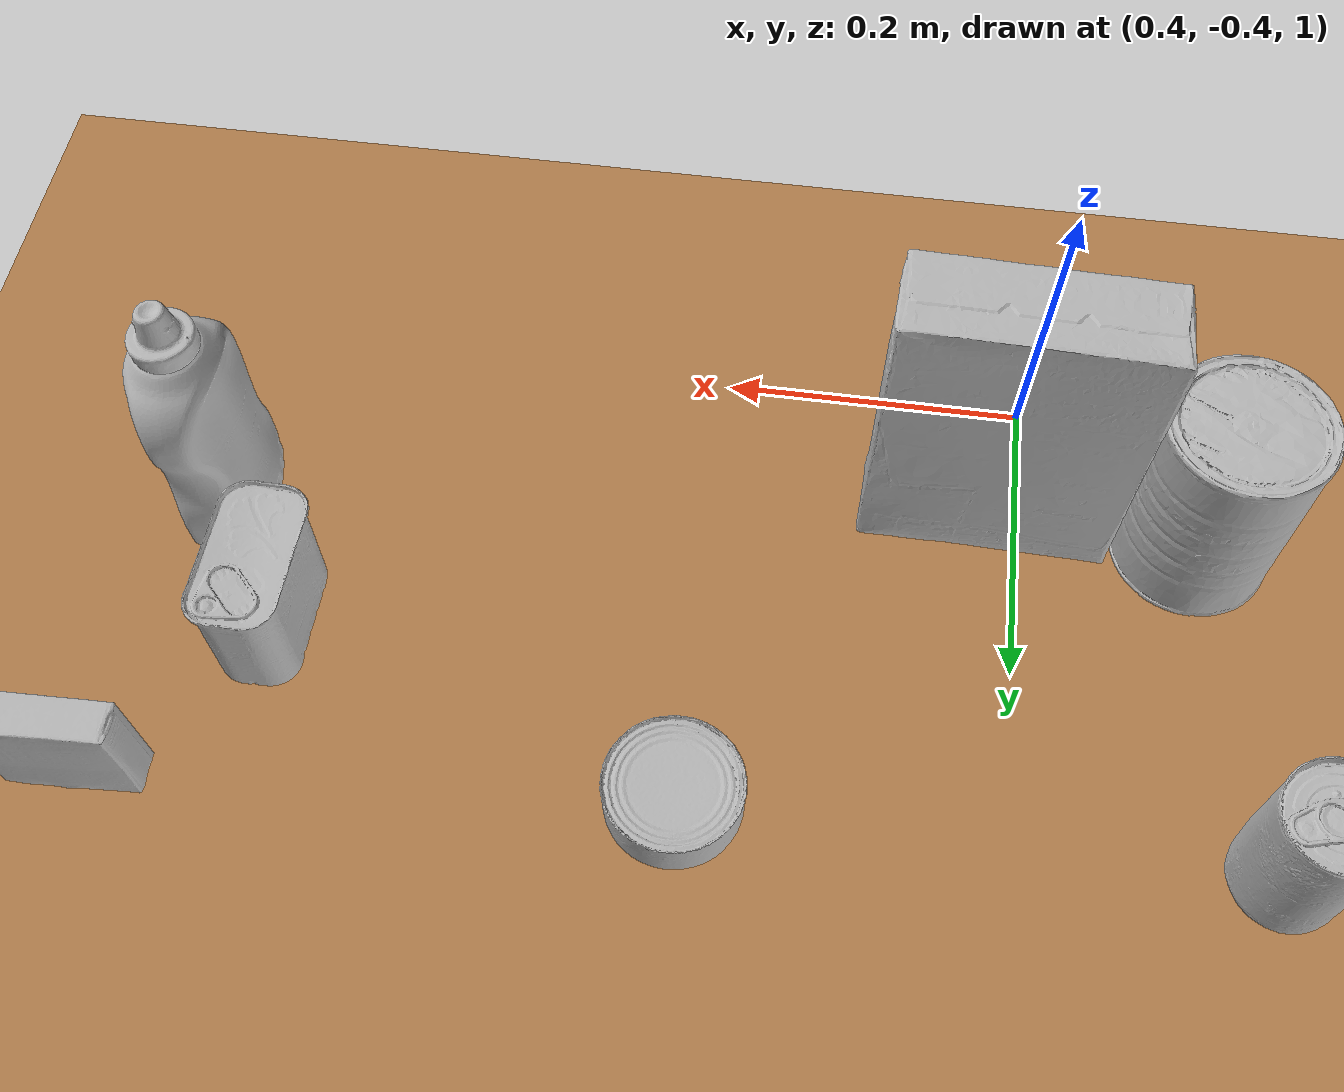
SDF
<sdf version="1.6">
 <world name="default">
  <light name="sun" type="directional">
   <pose>0 0 10 0 -0 0</pose>
   <diffuse>0.8 0.8 0.8 1</diffuse>
   <specular>0.2 0.2 0.2 1</specular>
   <attenuation>
    <range>1000</range>
    <constant>0.9</constant>
    <linear>0.01</linear>
    <quadratic>0.001</quadratic>
   </attenuation>
   <direction>-0.5 0.1 -0.9</direction>
   <spot><inner_angle>0</inner_angle><outer_angle>0</outer_angle><falloff>0</falloff></spot>
  </light>
  <model name="ground_plane">
   <static>1</static>
   <link name="link">
    <collision name="collision">
     <geometry><plane><normal>0 0 1</normal><size>100 100</size></plane></geometry>
     <surface>
      <contact><collide_bitmask>65535</collide_bitmask></contact>
      <friction><ode><mu>100</mu><mu2>50</mu2></ode></friction>
     </surface>
    </collision>
    <visual name="visual">
     <cast_shadows>0</cast_shadows>
     <geometry><plane><normal>0 0 1</normal><size>100 100</size></plane></geometry>
     <material>
      <script><uri>file://media/materials/scripts/gazebo.material</uri><name>Gazebo/Grey</name></script>
     </material>
    </visual>
   </link>
  </model>
  <gravity>0 0 -9.8</gravity>
  <magnetic_field>6e-06 2.3e-05 -4.2e-05</magnetic_field>
  <atmosphere type="adiabatic"/>
  <physics name="default_physics" default="0" type="ode">
   <max_step_size>0.001</max_step_size>
   <real_time_factor>1</real_time_factor>
   <real_time_update_rate>1000</real_time_update_rate>
  </physics>
  <scene><ambient>0.4 0.4 0.4 1</ambient><background>0.7 0.7 0.7 1</background><shadows>1</shadows></scene>
  <audio><device>default</device></audio>
  <spherical_coordinates>
   <surface_model>EARTH_WGS84</surface_model>
   <latitude_deg>0</latitude_deg>
   <longitude_deg>0</longitude_deg>
   <elevation>0</elevation>
   <heading_deg>0</heading_deg>
  </spherical_coordinates>
  <model name="table">
   <static>1</static>
   <link name="link">
    <collision name="surface">
     <pose>0 0 1 0 -0 0</pose>
     <geometry><box><size>1.5 0.8 0.03</size></box></geometry>
     <surface><friction><ode><mu>0.6</mu><mu2>0.6</mu2></ode></friction></surface>
    </collision>
    <visual name="visual1">
     <pose>0 0 1 0 -0 0</pose>
     <geometry><box><size>1.5 0.8 0.03</size></box></geometry>
     <material>
      <script><uri>file://media/materials/scripts/gazebo.material</uri><name>Gazebo/Wood</name></script>
     </material>
    </visual>
    <collision name="front_left_leg">
     <pose>0.68 0.38 0.5 0 -0 0</pose>
     <geometry><cylinder><radius>0.02</radius><length>1</length></cylinder></geometry>
    </collision>
    <visual name="front_left_leg">
     <pose>0.68 0.38 0.5 0 -0 0</pose>
     <geometry><cylinder><radius>0.02</radius><length>1</length></cylinder></geometry>
     <material>
      <script><uri>file://media/materials/scripts/gazebo.material</uri><name>Gazebo/Grey</name></script>
     </material>
    </visual>
    <collision name="front_right_leg">
     <pose>0.68 -0.38 0.5 0 -0 0</pose>
     <geometry><cylinder><radius>0.02</radius><length>1</length></cylinder></geometry>
    </collision>
    <visual name="front_right_leg">
     <pose>0.68 -0.38 0.5 0 -0 0</pose>
     <geometry><cylinder><radius>0.02</radius><length>1</length></cylinder></geometry>
     <material>
      <script><uri>file://media/materials/scripts/gazebo.material</uri><name>Gazebo/Grey</name></script>
     </material>
    </visual>
    <collision name="back_right_leg">
     <pose>-0.68 -0.38 0.5 0 -0 0</pose>
     <geometry><cylinder><radius>0.02</radius><length>1</length></cylinder></geometry>
    </collision>
    <visual name="back_right_leg">
     <pose>-0.68 -0.38 0.5 0 -0 0</pose>
     <geometry><cylinder><radius>0.02</radius><length>1</length></cylinder></geometry>
     <material>
      <script><uri>file://media/materials/scripts/gazebo.material</uri><name>Gazebo/Grey</name></script>
     </material>
    </visual>
    <collision name="back_left_leg">
     <pose>-0.68 0.38 0.5 0 -0 0</pose>
     <geometry><cylinder><radius>0.02</radius><length>1</length></cylinder></geometry>
    </collision>
    <visual name="back_left_leg">
     <pose>-0.68 0.38 0.5 0 -0 0</pose>
     <geometry><cylinder><radius>0.02</radius><length>1</length></cylinder></geometry>
     <material>
      <script><uri>file://media/materials/scripts/gazebo.material</uri><name>Gazebo/Grey</name></script>
     </material>
    </visual>
   </link>
   <pose>0.38221 -0.184756 0 0 -0 0</pose>
  </model>
  <model name="gelatin_box">
   <link name="link">
    <inertial>
     <mass>0.097</mass>
     <inertia>
      <ixx>6.4739e-05</ixx>
      <ixy>0</ixy>
      <ixz>0</ixz>
      <iyy>4.9413e-05</iyy>
      <iyz>0</iyz>
      <izz>0.000101478</izz>
     </inertia>
     <pose>0 0 0.014 0 -0 0</pose>
    </inertial>
    <collision name="collision">
     <pose>0 0 0.014 0 -0 0</pose>
     <geometry><box><size>0.073 0.085 0.028</size></box></geometry>
    </collision>
    <visual name="visual">
     <pose>0.025 0.005 0 0 0 -0.2</pose>
     <geometry><mesh><uri>model://gelatin_box/meshes/textured.dae</uri></mesh></geometry>
    </visual>
   </link>
   <pose>0.959376 -0.070202 1.0515 0.147913 1.57079 1.75087</pose>
  </model>
  <model name="tomato_soup_can">
   <link name="link">
    <inertial>
     <mass>0.349</mass>
     <inertia>
      <ixx>0.000391694</ixx>
      <ixy>0</ixy>
      <ixz>0</ixz>
      <iyy>0.000391694</iyy>
      <iyz>0</iyz>
      <izz>0.00019003</izz>
     </inertia>
     <pose>0 0 0.0505 0 -0 0</pose>
    </inertial>
    <collision name="collision">
     <pose>0 0 0.0505 0 -0 0</pose>
     <geometry><cylinder><radius>0.033</radius><length>0.101</length></cylinder></geometry>
    </collision>
    <visual name="visual">
     <pose>0.01 -0.085 0 0 -0 0</pose>
     <geometry><mesh><uri>model://tomato_soup_can/meshes/textured.dae</uri></mesh></geometry>
    </visual>
   </link>
   <pose>0.243771 -0.080113 1.015 -5e-06 -1e-06 0.073463</pose>
  </model>
  <model name="mustard_bottle">
   <link name="mustard_bottle::link">
    <inertial>
     <mass>0.603</mass>
     <inertia>
      <ixx>0.00226753</ixx>
      <ixy>0</ixy>
      <ixz>0</ixz>
      <iyy>0.00198307</iyy>
      <iyz>0</iyz>
      <izz>0.000622547</izz>
     </inertia>
     <pose>0 0 0.095 0 -0 0</pose>
    </inertial>
    <collision name="collision">
     <pose>0.025 -0.005 0 0 0 -1.15</pose>
     <geometry><mesh><uri>model://mustard_bottle/meshes/nontextured.stl</uri></mesh></geometry>
    </collision>
    <visual name="visual">
     <pose>0.025 -0.005 0 0 0 -1.15</pose>
     <geometry><mesh><uri>model://mustard_bottle/meshes/textured.dae</uri></mesh></geometry>
    </visual>
   </link>
   <pose>0.916141 -0.258871 1.01838 -0.018547 0.024194 -0.022577</pose>
  </model>
  <model name="cracker_box">
   <link name="link">
    <inertial>
     <mass>0.411</mass>
     <inertia>
      <ixx>0.00236544</ixx>
      <ixy>0</ixy>
      <ixz>0</ixz>
      <iyy>0.00163372</iyy>
      <iyz>0</iyz>
      <izz>0.000978317</izz>
     </inertia>
     <pose>0 0 0.105 0 -0 0</pose>
    </inertial>
    <collision name="collision">
     <pose>0 0 0.105 0 -0 0</pose>
     <geometry><box><size>0.06 0.158 0.21</size></box></geometry>
    </collision>
    <visual name="visual">
     <pose>0.015 0.015 0 0 -0 0</pose>
     <geometry><mesh><uri>model://cracker_box/meshes/textured.dae</uri></mesh></geometry>
    </visual>
   </link>
   <pose>0.422569 -0.311611 1.015 -4e-05 1.3e-05 -1.59583</pose>
  </model>
  <model name="sugar_box">
   <link name="link">
    <inertial>
     <mass>0.514</mass>
     <inertia>
      <ixx>0.00165105</ixx>
      <ixy>0</ixy>
      <ixz>0</ixz>
      <iyy>0.00137362</iyy>
      <iyz>0</iyz>
      <izz>0.000401134</izz>
     </inertia>
     <pose>0 0 0.0875 0 -0 0</pose>
    </inertial>
    <collision name="collision">
     <pose>0 0 0.0875 0 -0 0</pose>
     <geometry><box><size>0.038 0.089 0.175</size></box></geometry>
    </collision>
    <visual name="visual">
     <pose>0 0.015 0 0 0.05 0</pose>
     <geometry><mesh><uri>model://sugar_box/meshes/textured.dae</uri></mesh></geometry>
    </visual>
   </link>
   <pose>-0.120609 -0.479096 1.015 3.1e-05 -9e-06 0.009248</pose>
  </model>
  <model name="tuna_fish_can">
   <link name="link">
    <inertial>
     <mass>0.171</mass>
     <inertia>
      <ixx>9.2735e-05</ixx>
      <ixy>0</ixy>
      <ixz>0</ixz>
      <iyy>9.2735e-05</iyy>
      <iyz>0</iyz>
      <izz>0.000154434</izz>
     </inertia>
     <pose>0 0 0.0165 0 -0 0</pose>
    </inertial>
    <collision name="collision">
     <pose>0 0 0.0165 0 -0 0</pose>
     <geometry><cylinder><radius>0.0425</radius><length>0.033</length></cylinder></geometry>
    </collision>
    <visual name="visual">
     <pose>0.027 0.022 0 0 -0 0</pose>
     <geometry><mesh><uri>model://tuna_fish_can/meshes/textured.dae</uri></mesh></geometry>
    </visual>
   </link>
   <pose>0.598129 -0.081367 1.01502 -0.000256 -0.000422 0.028061</pose>
  </model>
  <model name="master_chef_can">
   <link name="link">
    <inertial>
     <mass>0.414</mass>
     <inertia>
      <ixx>0.000935778</ixx>
      <ixy>0</ixy>
      <ixz>0</ixz>
      <iyy>0.000935778</iyy>
      <iyz>0</iyz>
      <izz>0.000538407</izz>
     </inertia>
     <pose>0 0 0.0695 0 -0 0</pose>
    </inertial>
    <collision name="collision">
     <pose>0 0 0.0695 0 -0 0</pose>
     <geometry><cylinder><radius>0.051</radius><length>0.139</length></cylinder></geometry>
    </collision>
    <visual name="visual">
     <pose>0.015 0.01 0 0 -0 0</pose>
     <geometry><mesh><uri>model://master_chef_can/meshes/textured.dae</uri></mesh></geometry>
    </visual>
   </link>
   <pose>0.292811 -0.299861 1.015 9e-06 -1.3e-05 0.017707</pose>
  </model>
  <model name="pitcher_base">
   <link name="link">
    <inertial>
     <mass>0.244</mass>
     <inertia><ixx>1</ixx><ixy>0</ixy><ixz>0</ixz><iyy>1</iyy><iyz>0</iyz><izz>1</izz></inertia>
    </inertial>
    <collision name="collision">
     <geometry><mesh><uri>model://pitcher_base/meshes/textured.dae</uri></mesh></geometry>
    </collision>
    <visual name="visual">
     <geometry><mesh><uri>model://pitcher_base/meshes/textured.dae</uri></mesh></geometry>
    </visual>
   </link>
   <pose>-59.8965 -37.6048 0.022997 -0.284838 0.111175 -0.40111</pose>
  </model>
  <model name="potted_meat_can">
   <link name="link">
    <inertial>
     <mass>0.37</mass>
     <inertia>
      <ixx>0.000497434</ixx>
      <ixy>0</ixy>
      <ixz>0</ixz>
      <iyy>0.000284407</iyy>
      <iyz>0</iyz>
      <izz>0.000367194</izz>
     </inertia>
     <pose>0 0 0.041 0 -0 0</pose>
    </inertial>
    <collision name="collision">
     <pose>0 0 0.041 0 -0 0</pose>
     <geometry><box><size>0.05 0.097 0.082</size></box></geometry>
    </collision>
    <visual name="visual">
     <pose>-0.022 0.035 0 0 -0 1.5</pose>
     <geometry><mesh><uri>model://potted_meat_can/meshes/textured.dae</uri></mesh></geometry>
    </visual>
   </link>
   <pose>0.863955 -0.17157 1.015 0 -0 0</pose>
  </model>
  <light name="user_spot_light_0" type="spot">
   <pose>0 -1 1 0 -0 0</pose>
   <diffuse>0.5 0.5 0.5 1</diffuse>
   <specular>0.1 0.1 0.1 1</specular>
   <direction>0 0 -1</direction>
   <attenuation>
    <range>20</range>
    <constant>0.5</constant>
    <linear>0.01</linear>
    <quadratic>0.001</quadratic>
   </attenuation>
   <cast_shadows>0</cast_shadows>
   <spot><inner_angle>0.6</inner_angle><outer_angle>1</outer_angle><falloff>1</falloff></spot>
  </light>
  <model name="1080pcamera">
   <pose>1.34317 -0.226675 1.23991 0 -0 3.1291</pose>
   <link name="link">
    <inertial>
     <mass>1e-05</mass>
     <inertia><ixx>0</ixx><iyy>0</iyy><izz>0</izz><ixy>0</ixy><ixz>0</ixz><iyz>0</iyz></inertia>
    </inertial>
    <collision name="collision"><geometry><box><size>0.1 0.1 0.1</size></box></geometry></collision>
    <sensor name="camera" type="depth">
     <always_on>1</always_on>
     <update_rate>30</update_rate>
     <camera name="__default__">
      <horizontal_fov>1.39626</horizontal_fov>
      <image><format>B8G8R8</format><width>1920</width><height>1080</height></image>
      <clip><near>0.4</near><far>16</far></clip>
     </camera>
     <plugin name="camera_plugin" filename="libgazebo_ros_openni_kinect.so">
      <baseline>0.2</baseline>
      <alwaysOn>1</alwaysOn>
      <updateRate>0.0</updateRate>
      <cameraName>camera_ir</cameraName>
      <imageTopicName>/camera/color/image_raw_1080p_1</imageTopicName>
      <cameraInfoTopicName>/camera/color/camera_info</cameraInfoTopicName>
      <depthImageTopicName>/camera/depth/image_depth_1</depthImageTopicName>
      <depthImageCameraInfoTopicName>/camera/depth/camera_info</depthImageCameraInfoTopicName>
      <pointCloudTopicName>/camera/depth/points</pointCloudTopicName>
      <frameName>camera_link</frameName>
      <pointCloudCutoff>0.5</pointCloudCutoff>
      <pointCloudCutoffMax>8.0</pointCloudCutoffMax>
      <distortionK1>0</distortionK1>
      <distortionK2>0</distortionK2>
      <distortionK3>0</distortionK3>
      <distortionT1>0</distortionT1>
      <distortionT2>0</distortionT2>
      <CxPrime>0</CxPrime>
      <Cx>0</Cx>
      <Cy>0</Cy>
      <focalLength>0</focalLength>
      <hackBaseline>0</hackBaseline>
     </plugin>
    </sensor>
    <gravity>0</gravity>
   </link>
  </model>
  <model name="1080pcamera_0">
   <pose>0.400818 -1.06814 1.23512 0 -0 1.57402</pose>
   <link name="link">
    <inertial>
     <mass>1e-05</mass>
     <inertia><ixx>0</ixx><iyy>0</iyy><izz>0</izz><ixy>0</ixy><ixz>0</ixz><iyz>0</iyz></inertia>
    </inertial>
    <collision name="collision"><geometry><box><size>0.1 0.1 0.1</size></box></geometry></collision>
    <sensor name="camera" type="depth">
     <always_on>1</always_on>
     <update_rate>30</update_rate>
     <camera name="__default__">
      <horizontal_fov>1.39626</horizontal_fov>
      <image><format>B8G8R8</format><width>1920</width><height>1080</height></image>
      <clip><near>0.4</near><far>16</far></clip>
     </camera>
     <plugin name="camera_plugin" filename="libgazebo_ros_openni_kinect.so">
      <baseline>0.2</baseline>
      <alwaysOn>1</alwaysOn>
      <updateRate>0.0</updateRate>
      <cameraName>camera_ir</cameraName>
      <imageTopicName>/camera/color/image_raw_1080p_2</imageTopicName>
      <cameraInfoTopicName>/camera/color/camera_info</cameraInfoTopicName>
      <depthImageTopicName>/camera/depth/image_depth_2</depthImageTopicName>
      <depthImageCameraInfoTopicName>/camera/depth/camera_info</depthImageCameraInfoTopicName>
      <pointCloudTopicName>/camera/depth/points</pointCloudTopicName>
      <frameName>camera_link</frameName>
      <pointCloudCutoff>0.5</pointCloudCutoff>
      <pointCloudCutoffMax>8.0</pointCloudCutoffMax>
      <distortionK1>0</distortionK1>
      <distortionK2>0</distortionK2>
      <distortionK3>0</distortionK3>
      <distortionT1>0</distortionT1>
      <distortionT2>0</distortionT2>
      <CxPrime>0</CxPrime>
      <Cx>0</Cx>
      <Cy>0</Cy>
      <focalLength>0</focalLength>
      <hackBaseline>0</hackBaseline>
     </plugin>
    </sensor>
    <gravity>0</gravity>
   </link>
  </model>
  <model name="1080pcamera_1">
   <pose>0.460018 0.706432 1.23815 0 0 -1.59065</pose>
   <link name="link">
    <inertial>
     <mass>1e-05</mass>
     <inertia><ixx>0</ixx><iyy>0</iyy><izz>0</izz><ixy>0</ixy><ixz>0</ixz><iyz>0</iyz></inertia>
    </inertial>
    <collision name="collision"><geometry><box><size>0.1 0.1 0.1</size></box></geometry></collision>
    <sensor name="camera" type="depth">
     <always_on>1</always_on>
     <update_rate>30</update_rate>
     <camera name="__default__">
      <horizontal_fov>1.39626</horizontal_fov>
      <image><format>B8G8R8</format><width>1920</width><height>1080</height></image>
      <clip><near>0.4</near><far>16</far></clip>
     </camera>
     <plugin name="camera_plugin" filename="libgazebo_ros_openni_kinect.so">
      <baseline>0.2</baseline>
      <alwaysOn>1</alwaysOn>
      <updateRate>0.0</updateRate>
      <cameraName>camera_ir</cameraName>
      <imageTopicName>/camera/color/image_raw_1080p_3</imageTopicName>
      <cameraInfoTopicName>/camera/color/camera_info</cameraInfoTopicName>
      <depthImageTopicName>/camera/depth/image_depth_3</depthImageTopicName>
      <depthImageCameraInfoTopicName>/camera/depth/camera_info</depthImageCameraInfoTopicName>
      <pointCloudTopicName>/camera/depth/points</pointCloudTopicName>
      <frameName>camera_link</frameName>
      <pointCloudCutoff>0.5</pointCloudCutoff>
      <pointCloudCutoffMax>8.0</pointCloudCutoffMax>
      <distortionK1>0</distortionK1>
      <distortionK2>0</distortionK2>
      <distortionK3>0</distortionK3>
      <distortionT1>0</distortionT1>
      <distortionT2>0</distortionT2>
      <CxPrime>0</CxPrime>
      <Cx>0</Cx>
      <Cy>0</Cy>
      <focalLength>0</focalLength>
      <hackBaseline>0</hackBaseline>
     </plugin>
    </sensor>
    <gravity>0</gravity>
   </link>
  </model>
  <light name="user_spot_light_0_clone" type="spot">
   <pose>0.082252 0.930896 1.44525 0 -0 0</pose>
   <diffuse>0.5 0.5 0.5 1</diffuse>
   <specular>0.1 0.1 0.1 1</specular>
   <direction>0 0 -1</direction>
   <attenuation>
    <range>20</range>
    <constant>0.5</constant>
    <linear>0.01</linear>
    <quadratic>0.001</quadratic>
   </attenuation>
   <cast_shadows>0</cast_shadows>
   <spot><inner_angle>0.6</inner_angle><outer_angle>1</outer_angle><falloff>1</falloff></spot>
  </light>
  <light name="user_spot_light_0_clone_clone" type="spot">
   <pose>0.139514 -2.58738 1.32913 0 -0 0</pose>
   <diffuse>0.5 0.5 0.5 1</diffuse>
   <specular>0.1 0.1 0.1 1</specular>
   <direction>0 0 -1</direction>
   <attenuation>
    <range>20</range>
    <constant>0.5</constant>
    <linear>0.01</linear>
    <quadratic>0.001</quadratic>
   </attenuation>
   <cast_shadows>0</cast_shadows>
   <spot><inner_angle>0.6</inner_angle><outer_angle>1</outer_angle><falloff>1</falloff></spot>
  </light>
 </world>
</sdf>
